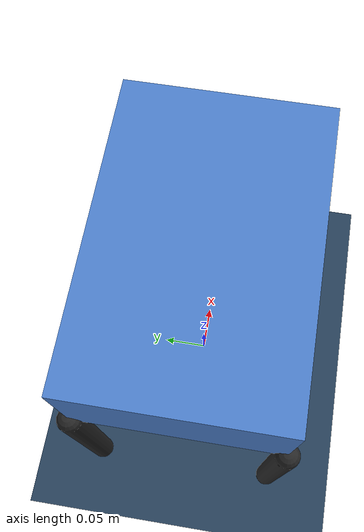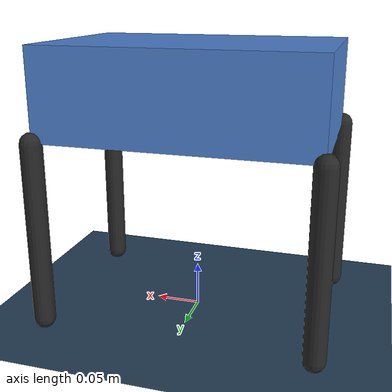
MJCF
<mujoco model="don1 scene">
  <include file="don1.xml"/>

  <statistic center="0 0 0.2" extent="0.8"/>

  <visual>
    <headlight diffuse="0.6 0.6 0.6" ambient="0.3 0.3 0.3" specular="0 0 0"/>
    <rgba haze="0.15 0.25 0.35 1"/>
    <global azimuth="-130" elevation="-20"/>
  </visual>

  <asset>
    <texture type="skybox" builtin="gradient" rgb1="0.3 0.5 0.7" rgb2="0 0 0" width="512" height="3072"/>
    <texture type="2d" name="groundplane" builtin="checker" mark="edge" rgb1="0.2 0.3 0.4" rgb2="0.1 0.2 0.3"
      markrgb="0.8 0.8 0.8" width="300" height="300"/>
    <material name="groundplane" texture="groundplane" texuniform="true" texrepeat="5 5" reflectance="0.2"/>
  </asset>

  <worldbody>
    <light pos="0 0 1.5" dir="0 0 -1" directional="true"/>
    <geom name="floor" size="0 0 0.05" type="plane" material="groundplane"/>
  </worldbody>
</mujoco>

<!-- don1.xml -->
<mujoco model="don1">
  <compiler angle="radian" autolimits="true"/>
  <option timestep="0.002" gravity="0 0 -9.81"/>

  <default>
    <default class="leg">
      <joint type="hinge" axis="0 1 0" range="-0.9 0.9" damping="0.3" armature="0.01"/>
      <geom type="capsule" size="0.012" rgba="0.15 0.15 0.15 1" friction="1.2 0.02 0.001"
            contype="1" conaffinity="1"/>
      <motor ctrlrange="-4 4" gear="1"/>
    </default>
    <default class="touch_site">
      <site rgba="1 0 0 0.3" group="4"/>
    </default>
  </default>

  <worldbody>
    <body name="torso" pos="0 0 0.26">
      <freejoint/>
      <geom name="torso_geom" type="box" size="0.15 0.1 0.05" rgba="0.3 0.5 0.8 1" mass="2"/>

      <!-- IMU 부착 지점 (몸체 중심) -->
      <site name="imu_site" pos="0 0 0" size="0.01" rgba="0 1 0 0.6"/>

      <!-- 몸통 하단(배) 터치 센서 영역 -->
      <site name="belly_touch_site" class="touch_site" type="box" pos="0 0 -0.05" size="0.15 0.1 0.005"/>

      <!-- 몸통 상단(등) 터치 센서 영역 -->
      <site name="back_touch_site" class="touch_site" type="box" pos="0 0 0.05" size="0.15 0.1 0.005"/>

      <!-- 앞왼쪽(FL) 다리: 힙 관절 1개, 무릎 없음 -->
      <body name="FL_leg" pos="0.15 0.1 -0.05">
        <joint name="FL_hip" class="leg"/>
        <geom name="FL_leg_geom" class="leg" fromto="0 0 0 0 0 -0.2"/>
        <site name="FL_foot_site" class="touch_site" type="sphere" pos="0 0 -0.2" size="0.02"/>
      </body>

      <!-- 앞오른쪽(FR) 다리 -->
      <body name="FR_leg" pos="0.15 -0.1 -0.05">
        <joint name="FR_hip" class="leg"/>
        <geom name="FR_leg_geom" class="leg" fromto="0 0 0 0 0 -0.2"/>
        <site name="FR_foot_site" class="touch_site" type="sphere" pos="0 0 -0.2" size="0.02"/>
      </body>

      <!-- 뒤왼쪽(RL) 다리 -->
      <body name="RL_leg" pos="-0.15 0.1 -0.05">
        <joint name="RL_hip" class="leg"/>
        <geom name="RL_leg_geom" class="leg" fromto="0 0 0 0 0 -0.2"/>
        <site name="RL_foot_site" class="touch_site" type="sphere" pos="0 0 -0.2" size="0.02"/>
      </body>

      <!-- 뒤오른쪽(RR) 다리 -->
      <body name="RR_leg" pos="-0.15 -0.1 -0.05">
        <joint name="RR_hip" class="leg"/>
        <geom name="RR_leg_geom" class="leg" fromto="0 0 0 0 0 -0.2"/>
        <site name="RR_foot_site" class="touch_site" type="sphere" pos="0 0 -0.2" size="0.02"/>
      </body>
    </body>
  </worldbody>

  <actuator>
    <motor name="FL_hip_motor" joint="FL_hip" class="leg"/>
    <motor name="FR_hip_motor" joint="FR_hip" class="leg"/>
    <motor name="RL_hip_motor" joint="RL_hip" class="leg"/>
    <motor name="RR_hip_motor" joint="RR_hip" class="leg"/>
  </actuator>

  <sensor>
    <!-- 관절 회전각 센서 (다리 4개) -->
    <jointpos name="FL_hip_pos" joint="FL_hip"/>
    <jointpos name="FR_hip_pos" joint="FR_hip"/>
    <jointpos name="RL_hip_pos" joint="RL_hip"/>
    <jointpos name="RR_hip_pos" joint="RR_hip"/>

    <!-- 관절 각속도 센서 (RL 관측용 — 걸음의 속도감을 파악하기 위해 필요) -->
    <jointvel name="FL_hip_vel" joint="FL_hip"/>
    <jointvel name="FR_hip_vel" joint="FR_hip"/>
    <jointvel name="RL_hip_vel" joint="RL_hip"/>
    <jointvel name="RR_hip_vel" joint="RR_hip"/>

    <!-- 몸체 IMU: 자세(orientation) + 각속도(gyro) + 가속도(accelerometer) -->
    <framequat name="imu_orient" objtype="site" objname="imu_site"/>
    <gyro name="imu_gyro" site="imu_site"/>
    <accelerometer name="imu_acc" site="imu_site"/>

    <!-- 다리 끝 터치 센서 (4개) -->
    <touch name="FL_foot_touch" site="FL_foot_site"/>
    <touch name="FR_foot_touch" site="FR_foot_site"/>
    <touch name="RL_foot_touch" site="RL_foot_site"/>
    <touch name="RR_foot_touch" site="RR_foot_site"/>

    <!-- 몸통 하단(배) / 상단(등) 터치 센서 -->
    <touch name="belly_touch" site="belly_touch_site"/>
    <touch name="back_touch" site="back_touch_site"/>
  </sensor>
</mujoco>
